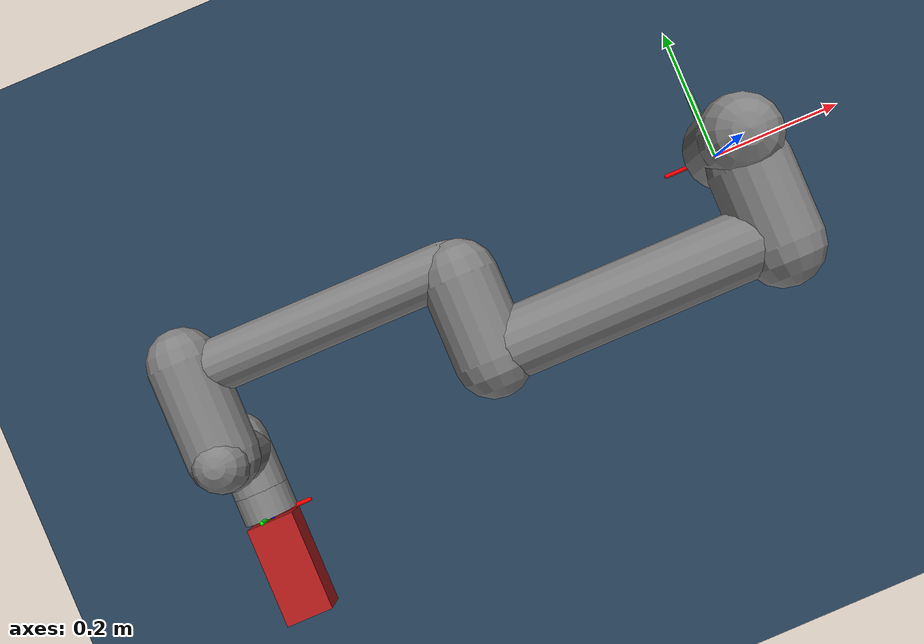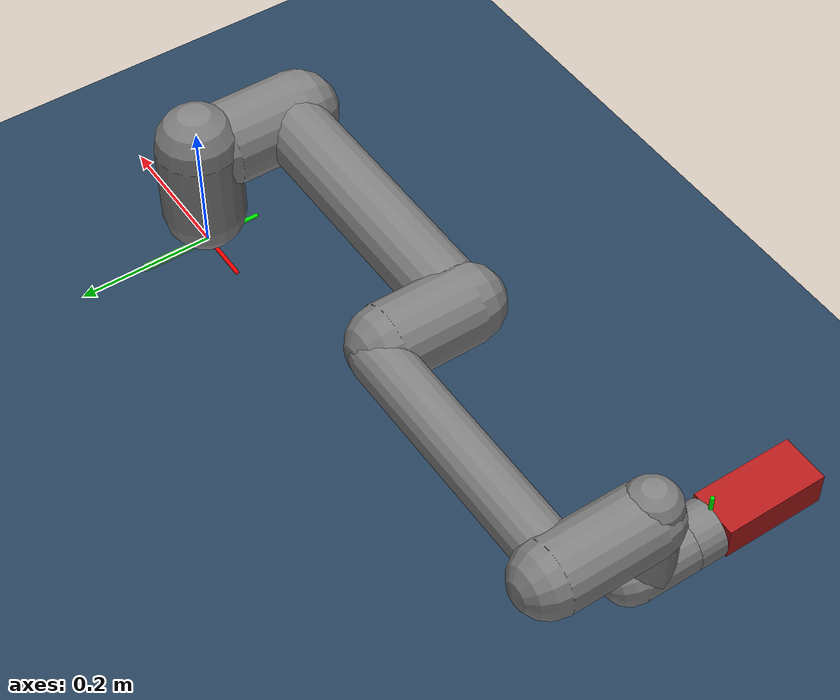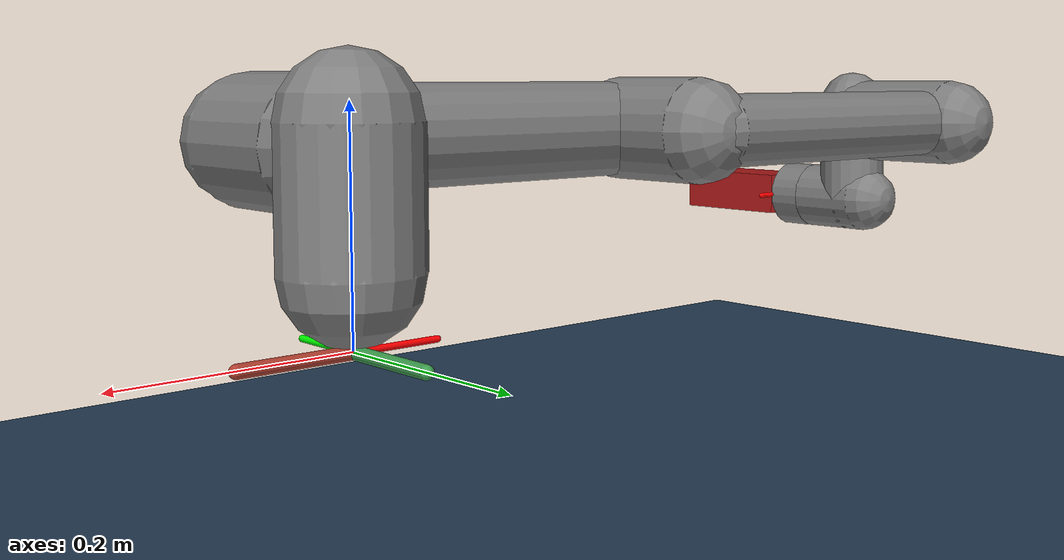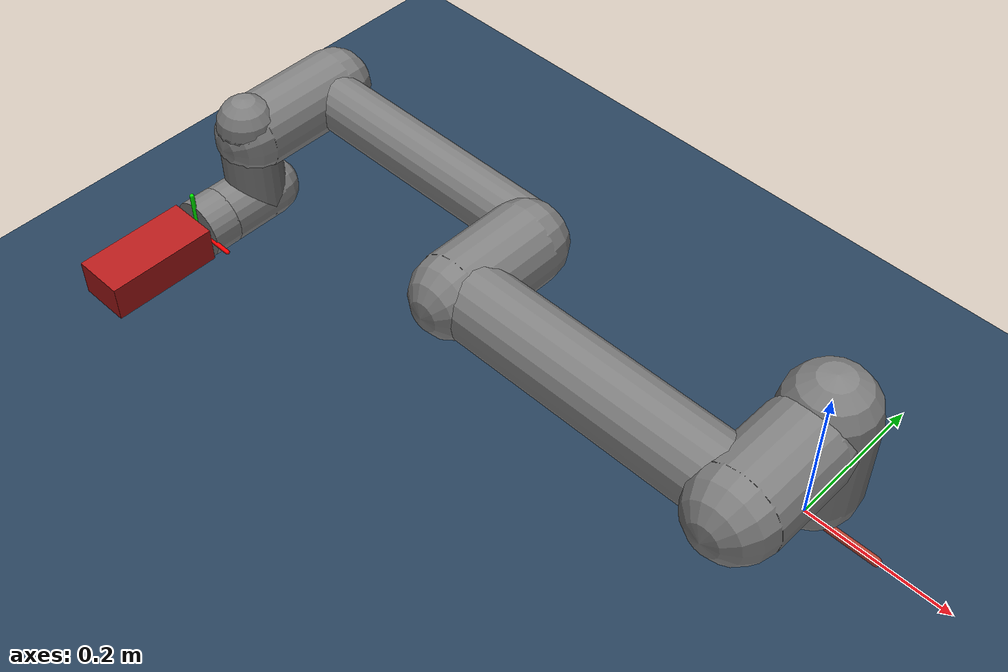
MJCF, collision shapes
<mujoco model="ur5e environment">
  <include file="ur5e.xml"/>

  <statistic center="0.3 0 0.4" extent="0.8"/>

  <visual>
    <headlight diffuse="0.6 0.6 0.6" ambient="0.1 0.1 0.1" specular="0 0 0"/>
    <rgba haze="0.15 0.25 0.35 1"/>
    <global azimuth="120" elevation="-20"/>
  </visual>

  <asset>
    <texture type="skybox" builtin="gradient" rgb1="0.3 0.5 0.7" rgb2="0 0 0" width="512" height="3072"/>
    <texture type="2d" name="groundplane" builtin="checker" mark="edge" rgb1="0.2 0.3 0.4" rgb2="0.1 0.2 0.3"
      markrgb="0.8 0.8 0.8" width="300" height="300"/>
    <material name="groundplane" texture="groundplane" texuniform="true" texrepeat="5 5" reflectance="0.2"/>
  </asset>

  <worldbody>
    <light pos="0 0 1.5" dir="0 0 -1" directional="true"/>
    <!-- Frame defining the real 0 level -->
    <site name="world_frame" pos="0 0.0 0.0" quat="1 0 0 0"/>
    <geom type="capsule" fromto="0 0 0 0.1 0 0" rgba="0.694 0.251 0.192 1" size="0.006" contype="0" conaffinity="0"/>
    <geom type="capsule" fromto="0 0 0 0 0.1 0" rgba="0.251 0.631 0.318 1" size="0.006" contype="0" conaffinity="0"/>
    <geom type="capsule" fromto="0 0 0 0 0 0.1" rgba="0.251 0.69 0.851 1" size="0.006" contype="0" conaffinity="0"/>
    <!-- The floor starts 20 cm below the 'real 0 level'-->
    <geom name="floor" size="0 0 0.05" type="plane" pos="0 0 -0.2" material="groundplane"/>
  </worldbody>
</mujoco>

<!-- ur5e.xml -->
<mujoco model="ur5e_with_hande">
  <compiler angle="radian" meshdir="assets" autolimits="true"/>
  <option integrator="implicitfast"/>
  <default>
    <default class="ur5e">
      <material specular="0.5" shininess="0.25"/>
      <joint axis="0 1 0" range="-6.28319 6.28319" armature="0.1"/>
      <general gaintype="fixed" biastype="affine" ctrlrange="-6.2831 6.2831"
        gainprm="2000" biasprm="0 -2000 -400" forcerange="-150 150"/>
      <default class="size3">
        <default class="size3_limited">
          <joint range="-3.1415 3.1415"/>
          <general ctrlrange="-3.1415 3.1415"/>
        </default>
      </default>
      <default class="size1">
        <general gainprm="500" biasprm="0 -500 -100" forcerange="-28 28"/>
      </default>
      <default class="visual">
        <geom type="mesh" contype="0" conaffinity="0" group="2"/>
      </default>
      <default class="collision">
        <geom type="capsule" group="3"/>
        <default class="eef_collision">
          <geom type="cylinder"/>
        </default>
      </default>
      <site size="0.001" rgba="0.5 0.5 0.5 0.3" group="4"/>
    </default>
  </default>

  <asset>
    <material class="ur5e" name="black" rgba="0.033 0.033 0.033 1"/>
    <material class="ur5e" name="jointgray" rgba="0.278 0.278 0.278 1"/>
    <material class="ur5e" name="linkgray" rgba="0.82 0.82 0.82 1"/>
    <material class="ur5e" name="urblue" rgba="0.49 0.678 0.8 1"/>

    <mesh file="base_0.obj"/>
    <mesh file="base_1.obj"/>
    <mesh file="shoulder_0.obj"/>
    <mesh file="shoulder_1.obj"/>
    <mesh file="shoulder_2.obj"/>
    <mesh file="upperarm_0.obj"/>
    <mesh file="upperarm_1.obj"/>
    <mesh file="upperarm_2.obj"/>
    <mesh file="upperarm_3.obj"/>
    <mesh file="forearm_0.obj"/>
    <mesh file="forearm_1.obj"/>
    <mesh file="forearm_2.obj"/>
    <mesh file="forearm_3.obj"/>
    <mesh file="wrist1_0.obj"/>
    <mesh file="wrist1_1.obj"/>
    <mesh file="wrist1_2.obj"/>
    <mesh file="wrist2_0.obj"/>
    <mesh file="wrist2_1.obj"/>
    <mesh file="wrist2_2.obj"/>
    <mesh file="wrist3.obj"/>

    <!-- Added Hande gripper -->
    <mesh name="hande_mesh" file="hande_gripper.stl"/>
  </asset>

  <worldbody>
    <light name="spotlight" mode="targetbodycom" target="wrist_2_link" pos="0 -1 2"/>

    <body name="base" pos="0 0 0" quat="0 0 0 -1" childclass="ur5e">
      <inertial mass="4.0" pos="0 0 0" diaginertia="0.00443333156 0.00443333156 0.0072"/>
      <geom type="capsule" fromto="0 0 0 0.08 0 0" rgba="1 0 0 1" size="0.003" contype="0" conaffinity="0"/>
      <geom type="capsule" fromto="0 0 0 0 0.08 0" rgba="0 1 0 1" size="0.003" contype="0" conaffinity="0"/>
      <geom type="capsule" fromto="0 0 0 0 0 0.08" rgba="0 0 1 1" size="0.003" contype="0" conaffinity="0"/>
      <geom mesh="base_0" material="black" class="visual"/>
      <geom mesh="base_1" material="jointgray" class="visual"/>

      <body name="shoulder_link" pos="0 0 0.163">
        <inertial mass="3.7" pos="0 0 0" diaginertia="0.0102675 0.0102675 0.00666"/>
        <joint name="shoulder_pan_joint" class="size3" axis="0 0 1"/>
        <geom mesh="shoulder_0" material="urblue" class="visual"/>
        <geom mesh="shoulder_1" material="black" class="visual"/>
        <geom mesh="shoulder_2" material="jointgray" class="visual"/>
        <geom name="shoulder_collision" class="collision" size="0.06 0.06" pos="0 0 -0.04"/>

        <body name="upper_arm_link" pos="0 0.138 0" quat="1 0 1 0">
          <inertial mass="8.393" pos="0 0 0.2125" diaginertia="0.133886 0.133886 0.0151074"/>
          <joint name="shoulder_lift_joint" class="size3"/>
          <geom mesh="upperarm_0" material="linkgray" class="visual"/>
          <geom mesh="upperarm_1" material="black" class="visual"/>
          <geom mesh="upperarm_2" material="jointgray" class="visual"/>
          <geom mesh="upperarm_3" material="urblue" class="visual"/>
          <geom name="upper_arm_collision_outer" class="collision" pos="0 -0.04 0" quat="1 1 0 0" size="0.06 0.06"/>
          <geom name="upper_arm_collision_inner" class="collision" size="0.05 0.2" pos="0 0 0.2"/>

          <body name="forearm_link" pos="0 -0.131 0.425">
            <inertial mass="2.275" pos="0 0 0.196" diaginertia="0.0311796 0.0311796 0.004095"/>
            <joint name="elbow_joint" class="size3_limited"/>
            <geom mesh="forearm_0" material="urblue" class="visual"/>
            <geom mesh="forearm_1" material="linkgray" class="visual"/>
            <geom mesh="forearm_2" material="black" class="visual"/>
            <geom mesh="forearm_3" material="jointgray" class="visual"/>
            <geom name="forearm_collision_outer" class="collision" pos="0 0.08 0" quat="1 1 0 0" size="0.055 0.06"/>
            <geom name="forearm_collision_inner" class="collision" size="0.038 0.19" pos="0 0 0.2"/>

            <body name="wrist_1_link" pos="0 0 0.392" quat="1 0 1 0">
              <inertial mass="1.219" pos="0 0.127 0" diaginertia="0.0025599 0.0025599 0.0021942"/>
              <joint name="wrist_1_joint" class="size1"/>
              <geom mesh="wrist1_0" material="black" class="visual"/>
              <geom mesh="wrist1_1" material="urblue" class="visual"/>
              <geom mesh="wrist1_2" material="jointgray" class="visual"/>
              <geom name="wrist_1_collision" class="collision" pos="0 0.05 0" quat="1 1 0 0" size="0.05 0.07"/>

              <body name="wrist_2_link" pos="0 0.127 0">
                <inertial mass="1.219" pos="0 0 0.1" diaginertia="0.0025599 0.0025599 0.0021942"/>
                <joint name="wrist_2_joint" axis="0 0 1" class="size1"/>
                <geom mesh="wrist2_0" material="black" class="visual"/>
                <geom mesh="wrist2_1" material="urblue" class="visual"/>
                <geom mesh="wrist2_2" material="jointgray" class="visual"/>
                <geom name="wrist_2_collision_lower" class="collision" size="0.04 0.06" pos="0 0 0.04"/>
                <geom name="wrist_2_collision_upper" class="collision" pos="0 0.02 0.1" quat="1 1 0 0" size="0.04 0.04"/>

                <body name="wrist_3_link" pos="0 0 0.1">
                  <inertial mass="0.1889" pos="0 0.0771683 0" quat="1 0 0 1"
                    diaginertia="0.000132134 9.90863e-05 9.90863e-05"/>
                  <joint name="wrist_3_joint" class="size1"/>
                  <geom material="linkgray" mesh="wrist3" class="visual"/>
                  <geom name="wrist_3_collision" class="eef_collision" pos="0 0.08 0" quat="1 1 0 0" size="0.04 0.02"/>
                  <site name="ee_site" pos="0 0.1 0" quat="0.7071 -0.7071 0 0"/>

                  <!-- Replace tool frames with Hande gripper -->
                  <body name="ee_flange" pos="0 0.1 0" quat="0.7071 -0.7071 0 0">
                    <geom type="capsule" fromto="0 0 0 0.05 0 0" rgba="1 0 0 1" size="0.002"/>
                    <geom type="capsule" fromto="0 0 0 0 0.05 0" rgba="0 1 0 1" size="0.002"/>
                    <geom type="capsule" fromto="0 0 0 0 0 0.05" rgba="0 0 1 1" size="0.002"/>

                    <!-- Hande gripper body -->
                    <body name="tool_base" pos="0 0 0" quat="1 0 0 0">
                      <inertial mass="2.6" pos="0 0 0.155" diaginertia="0.0143 0.0143 0.0016"/>
                      <geom type="capsule" fromto="0 0 0 0.06 0 0" rgba="1 0 0 1" size="0.003" contype="0" conaffinity="0"/>
                      <geom type="capsule" fromto="0 0 0 0 0.06 0" rgba="0 1 0 1" size="0.003" contype="0" conaffinity="0"/>
                      <geom type="capsule" fromto="0 0 0 0 0 0.06" rgba="0 0 1 1" size="0.003" contype="0" conaffinity="0"/>
                      <!-- Visual mesh -->
                      <geom name="hande_visual" type="mesh" mesh="hande_mesh"
                            rgba="0.2 0.2 0.2 1"
                            contype="0" conaffinity="0"
                            group="0"/>

                      <!-- Add collision geometry -->
                      <geom name="hande_collision" type="box" size="0.035 0.025 0.075"
                            pos="0 0 0.08"
                            rgba="0.7 0.1 0.1 0.3"
                            contype="1" conaffinity="1"
                            group="3"/>

                      <body name="tool_tip" pos="0 0 0.0" quat="1 0 0 0">
                        <site name="tool_tip_site" pos="0 0.0 0.0" quat="1 0 0 0"/>
                        <geom type="capsule" fromto="0 0 0 0.06 0 0" rgba="1 0 0 1" size="0.003" contype="0" conaffinity="0"/>
                        <geom type="capsule" fromto="0 0 0 0 0.06 0" rgba="0 1 0 1" size="0.003" contype="0" conaffinity="0"/>
                        <geom type="capsule" fromto="0 0 0 0 0 0.06" rgba="0 0 1 1" size="0.003" contype="0" conaffinity="0"/>
                      </body>
                    </body>
                  </body>
                </body>
              </body>
            </body>
          </body>
        </body>
      </body>
    </body>
  </worldbody>

  <actuator>
    <motor joint="shoulder_pan_joint" gear="1"/>
    <motor joint="shoulder_lift_joint" gear="1"/>
    <motor joint="elbow_joint" gear="1"/>
    <motor joint="wrist_1_joint" gear="1"/>
    <motor joint="wrist_2_joint" gear="1"/>
    <motor joint="wrist_3_joint" gear="1"/>
  </actuator>

  <keyframe>
    <key name="home" qpos="-1.5708 -1.5708 1.5708 -1.5708 -1.5708 0"
         ctrl="-1.5708 -1.5708 1.5708 -1.5708 -1.5708 0"/>
  </keyframe>
</mujoco>
